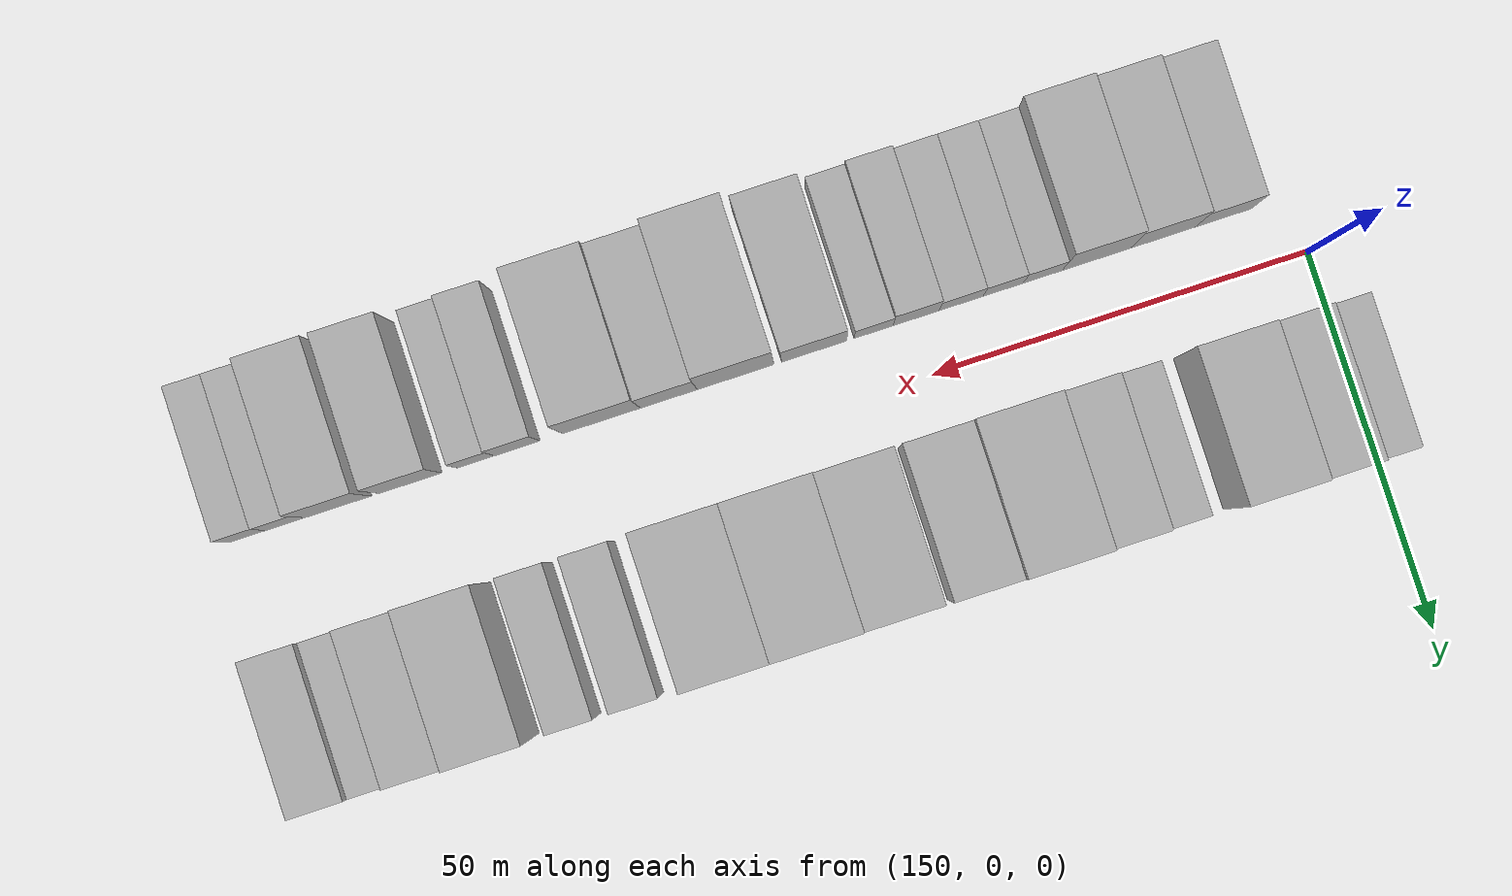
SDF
<sdf version="1.6">
 <world name="default">
  <model name="building_16">
   <static>1</static>
   <pose>149.1308 17.5000 0 0.000000 0.000000 1.570796</pose>
   <link name="link">
    <pose>0 0 6.00 0 0 0</pose>
    <collision name="collision"><geometry><box><size>20.0000 5.7092 12.0000</size></box></geometry></collision>
    <visual name="visual">
     <cast_shadows>0</cast_shadows>
     <geometry><box><size>20.0000 5.7092 12.0000</size></box></geometry>
     <material>
      <script>
       <uri>model://HANNAS_wall/materials/scripts</uri>
       <uri>model://HANNAS_wall/materials/textures</uri>
       <name>vrc/HANNAS_wall</name>
      </script>
     </material>
    </visual>
   </link>
  </model>
  <model name="building_17">
   <static>1</static>
   <pose>156.0610 17.5000 0 0.000000 0.000000 1.570796</pose>
   <link name="link">
    <pose>0 0 9.00 0 0 0</pose>
    <collision name="collision"><geometry><box><size>20.0000 8.1512 18.0000</size></box></geometry></collision>
    <visual name="visual">
     <cast_shadows>0</cast_shadows>
     <geometry><box><size>20.0000 8.1512 18.0000</size></box></geometry>
     <material>
      <script>
       <uri>model://HANNAS_wall/materials/scripts</uri>
       <uri>model://HANNAS_wall/materials/textures</uri>
       <name>vrc/HANNAS_wall</name>
      </script>
     </material>
    </visual>
   </link>
  </model>
  <model name="building_18">
   <static>1</static>
   <pose>165.2565 17.5000 0 0.000000 0.000000 1.570796</pose>
   <link name="link">
    <pose>0 0 12.00 0 0 0</pose>
    <collision name="collision"><geometry><box><size>20.0000 10.2397 24.0000</size></box></geometry></collision>
    <visual name="visual">
     <cast_shadows>0</cast_shadows>
     <geometry><box><size>20.0000 10.2397 24.0000</size></box></geometry>
     <material>
      <script>
       <uri>model://HANNAS_wall/materials/scripts</uri>
       <uri>model://HANNAS_wall/materials/textures</uri>
       <name>vrc/HANNAS_wall</name>
      </script>
     </material>
    </visual>
   </link>
  </model>
  <model name="building_19">
   <static>1</static>
   <pose>176.2796 17.5000 0 0.000000 0.000000 1.570796</pose>
   <link name="link">
    <pose>0 0 6.00 0 0 0</pose>
    <collision name="collision"><geometry><box><size>20.0000 5.8066 12.0000</size></box></geometry></collision>
    <visual name="visual">
     <cast_shadows>0</cast_shadows>
     <geometry><box><size>20.0000 5.8066 12.0000</size></box></geometry>
     <material>
      <script>
       <uri>model://HANNAS_wall/materials/scripts</uri>
       <uri>model://HANNAS_wall/materials/textures</uri>
       <name>vrc/HANNAS_wall</name>
      </script>
     </material>
    </visual>
   </link>
  </model>
  <model name="building_20">
   <static>1</static>
   <pose>183.0763 17.5000 0 0.000000 0.000000 1.570796</pose>
   <link name="link">
    <pose>0 0 9.00 0 0 0</pose>
    <collision name="collision"><geometry><box><size>20.0000 7.7868 18.0000</size></box></geometry></collision>
    <visual name="visual">
     <cast_shadows>0</cast_shadows>
     <geometry><box><size>20.0000 7.7868 18.0000</size></box></geometry>
     <material>
      <script>
       <uri>model://HANNAS_wall/materials/scripts</uri>
       <uri>model://HANNAS_wall/materials/textures</uri>
       <name>vrc/HANNAS_wall</name>
      </script>
     </material>
    </visual>
   </link>
  </model>
  <model name="building_21">
   <static>1</static>
   <pose>192.4936 17.5000 0 0.000000 0.000000 1.570796</pose>
   <link name="link">
    <pose>0 0 12.00 0 0 0</pose>
    <collision name="collision"><geometry><box><size>20.0000 11.0478 24.0000</size></box></geometry></collision>
    <visual name="visual">
     <cast_shadows>0</cast_shadows>
     <geometry><box><size>20.0000 11.0478 24.0000</size></box></geometry>
     <material>
      <script>
       <uri>model://HANNAS_wall/materials/scripts</uri>
       <uri>model://HANNAS_wall/materials/textures</uri>
       <name>vrc/HANNAS_wall</name>
      </script>
     </material>
    </visual>
   </link>
  </model>
  <model name="building_22">
   <static>1</static>
   <pose>202.5421 17.5000 0 0.000000 0.000000 1.570796</pose>
   <link name="link">
    <pose>0 0 10.50 0 0 0</pose>
    <collision name="collision"><geometry><box><size>20.0000 9.0492 21.0000</size></box></geometry></collision>
    <visual name="visual">
     <cast_shadows>0</cast_shadows>
     <geometry><box><size>20.0000 9.0492 21.0000</size></box></geometry>
     <material>
      <script>
       <uri>model://HANNAS_wall/materials/scripts</uri>
       <uri>model://HANNAS_wall/materials/textures</uri>
       <name>vrc/HANNAS_wall</name>
      </script>
     </material>
    </visual>
   </link>
  </model>
  <model name="building_23">
   <static>1</static>
   <pose>213.2186 17.5000 0 0.000000 0.000000 1.570796</pose>
   <link name="link">
    <pose>0 0 10.50 0 0 0</pose>
    <collision name="collision"><geometry><box><size>20.0000 10.3037 21.0000</size></box></geometry></collision>
    <visual name="visual">
     <cast_shadows>0</cast_shadows>
     <geometry><box><size>20.0000 10.3037 21.0000</size></box></geometry>
     <material>
      <script>
       <uri>model://HANNAS_wall/materials/scripts</uri>
       <uri>model://HANNAS_wall/materials/textures</uri>
       <name>vrc/HANNAS_wall</name>
      </script>
     </material>
    </visual>
   </link>
  </model>
  <model name="building_24">
   <static>1</static>
   <pose>224.2956 17.5000 0 0.000000 0.000000 1.570796</pose>
   <link name="link">
    <pose>0 0 12.00 0 0 0</pose>
    <collision name="collision"><geometry><box><size>20.0000 11.8503 24.0000</size></box></geometry></collision>
    <visual name="visual">
     <cast_shadows>0</cast_shadows>
     <geometry><box><size>20.0000 11.8503 24.0000</size></box></geometry>
     <material>
      <script>
       <uri>model://HANNAS_wall/materials/scripts</uri>
       <uri>model://HANNAS_wall/materials/textures</uri>
       <name>vrc/HANNAS_wall</name>
      </script>
     </material>
    </visual>
   </link>
  </model>
  <model name="building_25">
   <static>1</static>
   <pose>235.9127 17.5000 0 0.000000 0.000000 1.570796</pose>
   <link name="link">
    <pose>0 0 12.00 0 0 0</pose>
    <collision name="collision"><geometry><box><size>20.0000 11.3839 24.0000</size></box></geometry></collision>
    <visual name="visual">
     <cast_shadows>0</cast_shadows>
     <geometry><box><size>20.0000 11.3839 24.0000</size></box></geometry>
     <material>
      <script>
       <uri>model://HANNAS_wall/materials/scripts</uri>
       <uri>model://HANNAS_wall/materials/textures</uri>
       <name>vrc/HANNAS_wall</name>
      </script>
     </material>
    </visual>
   </link>
  </model>
  <model name="building_26">
   <static>1</static>
   <pose>247.7587 17.5000 0 0.000000 0.000000 1.570796</pose>
   <link name="link">
    <pose>0 0 7.50 0 0 0</pose>
    <collision name="collision"><geometry><box><size>20.0000 6.3081 15.0000</size></box></geometry></collision>
    <visual name="visual">
     <cast_shadows>0</cast_shadows>
     <geometry><box><size>20.0000 6.3081 15.0000</size></box></geometry>
     <material>
      <script>
       <uri>model://HANNAS_wall/materials/scripts</uri>
       <uri>model://HANNAS_wall/materials/textures</uri>
       <name>vrc/HANNAS_wall</name>
      </script>
     </material>
    </visual>
   </link>
  </model>
  <model name="building_27">
   <static>1</static>
   <pose>255.9973 17.5000 0 0.000000 0.000000 1.570796</pose>
   <link name="link">
    <pose>0 0 7.50 0 0 0</pose>
    <collision name="collision"><geometry><box><size>20.0000 6.1690 15.0000</size></box></geometry></collision>
    <visual name="visual">
     <cast_shadows>0</cast_shadows>
     <geometry><box><size>20.0000 6.1690 15.0000</size></box></geometry>
     <material>
      <script>
       <uri>model://HANNAS_wall/materials/scripts</uri>
       <uri>model://HANNAS_wall/materials/textures</uri>
       <name>vrc/HANNAS_wall</name>
      </script>
     </material>
    </visual>
   </link>
  </model>
  <model name="building_28">
   <static>1</static>
   <pose>266.0833 17.5000 0 0.000000 0.000000 1.570796</pose>
   <link name="link">
    <pose>0 0 12.00 0 0 0</pose>
    <collision name="collision"><geometry><box><size>20.0000 10.0030 24.0000</size></box></geometry></collision>
    <visual name="visual">
     <cast_shadows>0</cast_shadows>
     <geometry><box><size>20.0000 10.0030 24.0000</size></box></geometry>
     <material>
      <script>
       <uri>model://HANNAS_wall/materials/scripts</uri>
       <uri>model://HANNAS_wall/materials/textures</uri>
       <name>vrc/HANNAS_wall</name>
      </script>
     </material>
    </visual>
   </link>
  </model>
  <model name="building_29">
   <static>1</static>
   <pose>275.2106 17.5000 0 0.000000 0.000000 1.570796</pose>
   <link name="link">
    <pose>0 0 9.00 0 0 0</pose>
    <collision name="collision"><geometry><box><size>20.0000 8.2515 18.0000</size></box></geometry></collision>
    <visual name="visual">
     <cast_shadows>0</cast_shadows>
     <geometry><box><size>20.0000 8.2515 18.0000</size></box></geometry>
     <material>
      <script>
       <uri>model://HANNAS_wall/materials/scripts</uri>
       <uri>model://HANNAS_wall/materials/textures</uri>
       <name>vrc/HANNAS_wall</name>
      </script>
     </material>
    </visual>
   </link>
  </model>
  <model name="building_30">
   <static>1</static>
   <pose>281.9641 17.5000 0 0.000000 0.000000 1.570796</pose>
   <link name="link">
    <pose>0 0 6.00 0 0 0</pose>
    <collision name="collision"><geometry><box><size>20.0000 5.2556 12.0000</size></box></geometry></collision>
    <visual name="visual">
     <cast_shadows>0</cast_shadows>
     <geometry><box><size>20.0000 5.2556 12.0000</size></box></geometry>
     <material>
      <script>
       <uri>model://HANNAS_wall/materials/scripts</uri>
       <uri>model://HANNAS_wall/materials/textures</uri>
       <name>vrc/HANNAS_wall</name>
      </script>
     </material>
    </visual>
   </link>
  </model>
  <model name="building_31">
   <static>1</static>
   <pose>288.2241 17.5000 0 0.000000 0.000000 1.570796</pose>
   <link name="link">
    <pose>0 0 7.50 0 0 0</pose>
    <collision name="collision"><geometry><box><size>20.0000 7.2644 15.0000</size></box></geometry></collision>
    <visual name="visual">
     <cast_shadows>0</cast_shadows>
     <geometry><box><size>20.0000 7.2644 15.0000</size></box></geometry>
     <material>
      <script>
       <uri>model://HANNAS_wall/materials/scripts</uri>
       <uri>model://HANNAS_wall/materials/textures</uri>
       <name>vrc/HANNAS_wall</name>
      </script>
     </material>
    </visual>
   </link>
  </model>
  <model name="building_48">
   <static>1</static>
   <pose>158.7032 -17.5000 0 0.000000 0.000000 1.570796</pose>
   <link name="link">
    <pose>0 0 7.50 0 0 0</pose>
    <collision name="collision"><geometry><box><size>20.0000 7.4682 15.0000</size></box></geometry></collision>
    <visual name="visual">
     <cast_shadows>0</cast_shadows>
     <geometry><box><size>20.0000 7.4682 15.0000</size></box></geometry>
     <material>
      <script>
       <uri>model://HANNAS_wall/materials/scripts</uri>
       <uri>model://HANNAS_wall/materials/textures</uri>
       <name>vrc/HANNAS_wall</name>
      </script>
     </material>
    </visual>
   </link>
  </model>
  <model name="building_49">
   <static>1</static>
   <pose>166.7735 -17.5000 0 0.000000 0.000000 1.570796</pose>
   <link name="link">
    <pose>0 0 9.00 0 0 0</pose>
    <collision name="collision"><geometry><box><size>20.0000 8.6723 18.0000</size></box></geometry></collision>
    <visual name="visual">
     <cast_shadows>0</cast_shadows>
     <geometry><box><size>20.0000 8.6723 18.0000</size></box></geometry>
     <material>
      <script>
       <uri>model://HANNAS_wall/materials/scripts</uri>
       <uri>model://HANNAS_wall/materials/textures</uri>
       <name>vrc/HANNAS_wall</name>
      </script>
     </material>
    </visual>
   </link>
  </model>
  <model name="building_50">
   <static>1</static>
   <pose>175.6825 -17.5000 0 0.000000 0.000000 1.570796</pose>
   <link name="link">
    <pose>0 0 10.50 0 0 0</pose>
    <collision name="collision"><geometry><box><size>20.0000 9.1459 21.0000</size></box></geometry></collision>
    <visual name="visual">
     <cast_shadows>0</cast_shadows>
     <geometry><box><size>20.0000 9.1459 21.0000</size></box></geometry>
     <material>
      <script>
       <uri>model://HANNAS_wall/materials/scripts</uri>
       <uri>model://HANNAS_wall/materials/textures</uri>
       <name>vrc/HANNAS_wall</name>
      </script>
     </material>
    </visual>
   </link>
  </model>
  <model name="building_51">
   <static>1</static>
   <pose>182.8685 -17.5000 0 0.000000 0.000000 1.570796</pose>
   <link name="link">
    <pose>0 0 6.00 0 0 0</pose>
    <collision name="collision"><geometry><box><size>20.0000 5.2262 12.0000</size></box></geometry></collision>
    <visual name="visual">
     <cast_shadows>0</cast_shadows>
     <geometry><box><size>20.0000 5.2262 12.0000</size></box></geometry>
     <material>
      <script>
       <uri>model://HANNAS_wall/materials/scripts</uri>
       <uri>model://HANNAS_wall/materials/textures</uri>
       <name>vrc/HANNAS_wall</name>
      </script>
     </material>
    </visual>
   </link>
  </model>
  <model name="building_52">
   <static>1</static>
   <pose>188.1442 -17.5000 0 0.000000 0.000000 1.570796</pose>
   <link name="link">
    <pose>0 0 6.00 0 0 0</pose>
    <collision name="collision"><geometry><box><size>20.0000 5.3251 12.0000</size></box></geometry></collision>
    <visual name="visual">
     <cast_shadows>0</cast_shadows>
     <geometry><box><size>20.0000 5.3251 12.0000</size></box></geometry>
     <material>
      <script>
       <uri>model://HANNAS_wall/materials/scripts</uri>
       <uri>model://HANNAS_wall/materials/textures</uri>
       <name>vrc/HANNAS_wall</name>
      </script>
     </material>
    </visual>
   </link>
  </model>
  <model name="building_53">
   <static>1</static>
   <pose>193.7281 -17.5000 0 0.000000 0.000000 1.570796</pose>
   <link name="link">
    <pose>0 0 6.00 0 0 0</pose>
    <collision name="collision"><geometry><box><size>20.0000 5.8427 12.0000</size></box></geometry></collision>
    <visual name="visual">
     <cast_shadows>0</cast_shadows>
     <geometry><box><size>20.0000 5.8427 12.0000</size></box></geometry>
     <material>
      <script>
       <uri>model://HANNAS_wall/materials/scripts</uri>
       <uri>model://HANNAS_wall/materials/textures</uri>
       <name>vrc/HANNAS_wall</name>
      </script>
     </material>
    </visual>
   </link>
  </model>
  <model name="building_54">
   <static>1</static>
   <pose>199.7080 -17.5000 0 0.000000 0.000000 1.570796</pose>
   <link name="link">
    <pose>0 0 7.50 0 0 0</pose>
    <collision name="collision"><geometry><box><size>20.0000 6.1171 15.0000</size></box></geometry></collision>
    <visual name="visual">
     <cast_shadows>0</cast_shadows>
     <geometry><box><size>20.0000 6.1171 15.0000</size></box></geometry>
     <material>
      <script>
       <uri>model://HANNAS_wall/materials/scripts</uri>
       <uri>model://HANNAS_wall/materials/textures</uri>
       <name>vrc/HANNAS_wall</name>
      </script>
     </material>
    </visual>
   </link>
  </model>
  <model name="building_55">
   <static>1</static>
   <pose>205.3557 -17.5000 0 0.000000 0.000000 1.570796</pose>
   <link name="link">
    <pose>0 0 6.00 0 0 0</pose>
    <collision name="collision"><geometry><box><size>20.0000 5.1782 12.0000</size></box></geometry></collision>
    <visual name="visual">
     <cast_shadows>0</cast_shadows>
     <geometry><box><size>20.0000 5.1782 12.0000</size></box></geometry>
     <material>
      <script>
       <uri>model://HANNAS_wall/materials/scripts</uri>
       <uri>model://HANNAS_wall/materials/textures</uri>
       <name>vrc/HANNAS_wall</name>
      </script>
     </material>
    </visual>
   </link>
  </model>
  <model name="building_56">
   <static>1</static>
   <pose>213.2613 -17.5000 0 0.000000 0.000000 1.570796</pose>
   <link name="link">
    <pose>0 0 9.00 0 0 0</pose>
    <collision name="collision"><geometry><box><size>20.0000 8.6330 18.0000</size></box></geometry></collision>
    <visual name="visual">
     <cast_shadows>0</cast_shadows>
     <geometry><box><size>20.0000 8.6330 18.0000</size></box></geometry>
     <material>
      <script>
       <uri>model://HANNAS_wall/materials/scripts</uri>
       <uri>model://HANNAS_wall/materials/textures</uri>
       <name>vrc/HANNAS_wall</name>
      </script>
     </material>
    </visual>
   </link>
  </model>
  <model name="building_57">
   <static>1</static>
   <pose>223.6738 -17.5000 0 0.000000 0.000000 1.570796</pose>
   <link name="link">
    <pose>0 0 12.00 0 0 0</pose>
    <collision name="collision"><geometry><box><size>20.0000 10.1919 24.0000</size></box></geometry></collision>
    <visual name="visual">
     <cast_shadows>0</cast_shadows>
     <geometry><box><size>20.0000 10.1919 24.0000</size></box></geometry>
     <material>
      <script>
       <uri>model://HANNAS_wall/materials/scripts</uri>
       <uri>model://HANNAS_wall/materials/textures</uri>
       <name>vrc/HANNAS_wall</name>
      </script>
     </material>
    </visual>
   </link>
  </model>
  <model name="building_58">
   <static>1</static>
   <pose>232.5517 -17.5000 0 0.000000 0.000000 1.570796</pose>
   <link name="link">
    <pose>0 0 9.00 0 0 0</pose>
    <collision name="collision"><geometry><box><size>20.0000 7.5640 18.0000</size></box></geometry></collision>
    <visual name="visual">
     <cast_shadows>0</cast_shadows>
     <geometry><box><size>20.0000 7.5640 18.0000</size></box></geometry>
     <material>
      <script>
       <uri>model://HANNAS_wall/materials/scripts</uri>
       <uri>model://HANNAS_wall/materials/textures</uri>
       <name>vrc/HANNAS_wall</name>
      </script>
     </material>
    </visual>
   </link>
  </model>
  <model name="building_59">
   <static>1</static>
   <pose>241.5001 -17.5000 0 0.000000 0.000000 1.570796</pose>
   <link name="link">
    <pose>0 0 10.50 0 0 0</pose>
    <collision name="collision"><geometry><box><size>20.0000 10.3327 21.0000</size></box></geometry></collision>
    <visual name="visual">
     <cast_shadows>0</cast_shadows>
     <geometry><box><size>20.0000 10.3327 21.0000</size></box></geometry>
     <material>
      <script>
       <uri>model://HANNAS_wall/materials/scripts</uri>
       <uri>model://HANNAS_wall/materials/textures</uri>
       <name>vrc/HANNAS_wall</name>
      </script>
     </material>
    </visual>
   </link>
  </model>
  <model name="building_60">
   <static>1</static>
   <pose>252.6736 -17.5000 0 0.000000 0.000000 1.570796</pose>
   <link name="link">
    <pose>0 0 7.50 0 0 0</pose>
    <collision name="collision"><geometry><box><size>20.0000 6.0143 15.0000</size></box></geometry></collision>
    <visual name="visual">
     <cast_shadows>0</cast_shadows>
     <geometry><box><size>20.0000 6.0143 15.0000</size></box></geometry>
     <material>
      <script>
       <uri>model://HANNAS_wall/materials/scripts</uri>
       <uri>model://HANNAS_wall/materials/textures</uri>
       <name>vrc/HANNAS_wall</name>
      </script>
     </material>
    </visual>
   </link>
  </model>
  <model name="building_61">
   <static>1</static>
   <pose>258.1680 -17.5000 0 0.000000 0.000000 1.570796</pose>
   <link name="link">
    <pose>0 0 6.00 0 0 0</pose>
    <collision name="collision"><geometry><box><size>20.0000 4.9745 12.0000</size></box></geometry></collision>
    <visual name="visual">
     <cast_shadows>0</cast_shadows>
     <geometry><box><size>20.0000 4.9745 12.0000</size></box></geometry>
     <material>
      <script>
       <uri>model://HANNAS_wall/materials/scripts</uri>
       <uri>model://HANNAS_wall/materials/textures</uri>
       <name>vrc/HANNAS_wall</name>
      </script>
     </material>
    </visual>
   </link>
  </model>
  <model name="building_62">
   <static>1</static>
   <pose>266.8279 -17.5000 0 0.000000 0.000000 1.570796</pose>
   <link name="link">
    <pose>0 0 9.00 0 0 0</pose>
    <collision name="collision"><geometry><box><size>20.0000 8.3455 18.0000</size></box></geometry></collision>
    <visual name="visual">
     <cast_shadows>0</cast_shadows>
     <geometry><box><size>20.0000 8.3455 18.0000</size></box></geometry>
     <material>
      <script>
       <uri>model://HANNAS_wall/materials/scripts</uri>
       <uri>model://HANNAS_wall/materials/textures</uri>
       <name>vrc/HANNAS_wall</name>
      </script>
     </material>
    </visual>
   </link>
  </model>
  <model name="building_63">
   <static>1</static>
   <pose>276.3848 -17.5000 0 0.000000 0.000000 1.570796</pose>
   <link name="link">
    <pose>0 0 9.00 0 0 0</pose>
    <collision name="collision"><geometry><box><size>20.0000 8.7684 18.0000</size></box></geometry></collision>
    <visual name="visual">
     <cast_shadows>0</cast_shadows>
     <geometry><box><size>20.0000 8.7684 18.0000</size></box></geometry>
     <material>
      <script>
       <uri>model://HANNAS_wall/materials/scripts</uri>
       <uri>model://HANNAS_wall/materials/textures</uri>
       <name>vrc/HANNAS_wall</name>
      </script>
     </material>
    </visual>
   </link>
  </model>
  <model name="building_64">
   <static>1</static>
   <pose>283.3242 -17.5000 0 0.000000 0.000000 1.570796</pose>
   <link name="link">
    <pose>0 0 6.00 0 0 0</pose>
    <collision name="collision"><geometry><box><size>20.0000 5.1104 12.0000</size></box></geometry></collision>
    <visual name="visual">
     <cast_shadows>0</cast_shadows>
     <geometry><box><size>20.0000 5.1104 12.0000</size></box></geometry>
     <material>
      <script>
       <uri>model://HANNAS_wall/materials/scripts</uri>
       <uri>model://HANNAS_wall/materials/textures</uri>
       <name>vrc/HANNAS_wall</name>
      </script>
     </material>
    </visual>
   </link>
  </model>
  <model name="building_65">
   <static>1</static>
   <pose>288.3361 -17.5000 0 0.000000 0.000000 1.570796</pose>
   <link name="link">
    <pose>0 0 6.00 0 0 0</pose>
    <collision name="collision"><geometry><box><size>20.0000 4.9133 12.0000</size></box></geometry></collision>
    <visual name="visual">
     <cast_shadows>0</cast_shadows>
     <geometry><box><size>20.0000 4.9133 12.0000</size></box></geometry>
     <material>
      <script>
       <uri>model://HANNAS_wall/materials/scripts</uri>
       <uri>model://HANNAS_wall/materials/textures</uri>
       <name>vrc/HANNAS_wall</name>
      </script>
     </material>
    </visual>
   </link>
  </model>
 </world>
</sdf>
